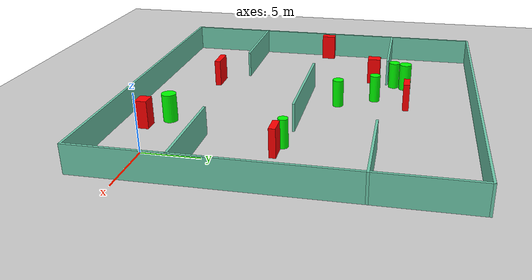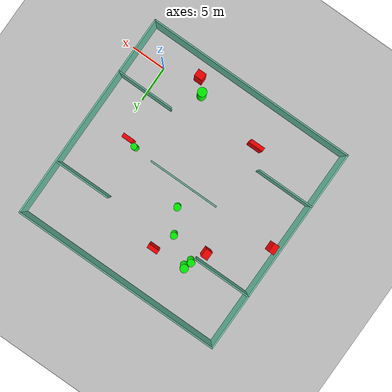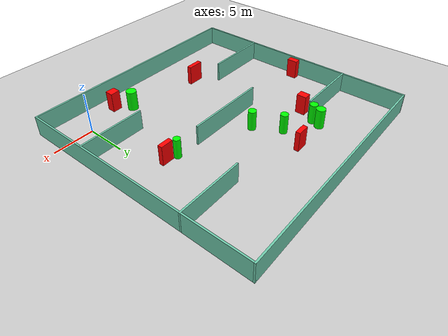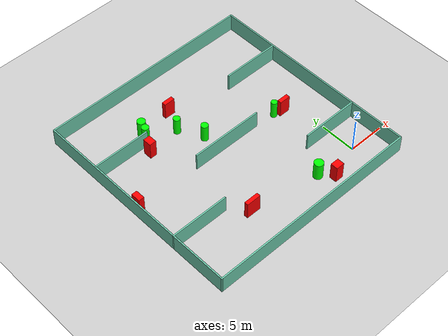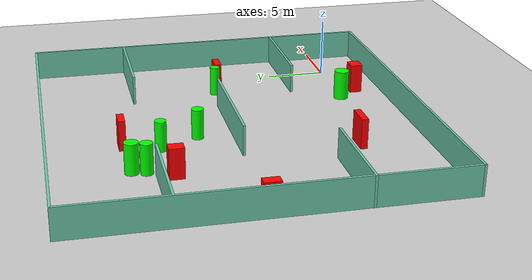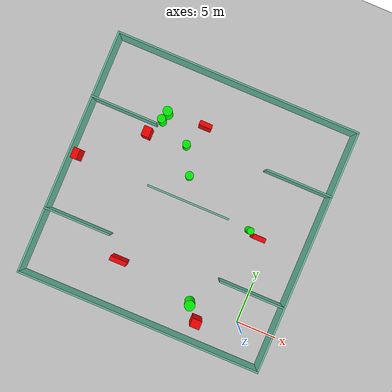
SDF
<sdf version="1.7">
 <world name="default">
  <light name="sun" type="directional">
   <pose>0 0 10 0 -0 0</pose>
   <diffuse>0.8 0.8 0.8 1</diffuse>
   <specular>0.2 0.2 0.2 1</specular>
   <attenuation>
    <range>1000</range>
    <constant>0.9</constant>
    <linear>0.01</linear>
    <quadratic>0.001</quadratic>
   </attenuation>
   <direction>-0.5 0.1 -0.9</direction>
   <spot><inner_angle>0</inner_angle><outer_angle>0</outer_angle><falloff>0</falloff></spot>
  </light>
  <model name="ground_plane">
   <static>1</static>
   <link name="link">
    <collision name="collision">
     <geometry><plane><normal>0 0 1</normal><size>100 100</size></plane></geometry>
     <surface>
      <contact><collide_bitmask>65535</collide_bitmask></contact>
      <friction><ode><mu>100</mu><mu2>50</mu2></ode></friction>
     </surface>
    </collision>
    <visual name="visual">
     <cast_shadows>0</cast_shadows>
     <geometry><plane><normal>0 0 1</normal><size>100 100</size></plane></geometry>
     <material>
      <script><uri>file://media/materials/scripts/gazebo.material</uri><name>Gazebo/Grey</name></script>
     </material>
    </visual>
   </link>
  </model>
  <gravity>0 0 -9.8</gravity>
  <magnetic_field>6e-06 2.3e-05 -4.2e-05</magnetic_field>
  <atmosphere type="adiabatic"/>
  <physics type="ode">
   <max_step_size>0.001</max_step_size>
   <real_time_factor>1</real_time_factor>
   <real_time_update_rate>1000</real_time_update_rate>
  </physics>
  <scene><ambient>0.4 0.4 0.4 1</ambient><background>0.7 0.7 0.7 1</background><shadows>1</shadows></scene>
  <spherical_coordinates>
   <surface_model>EARTH_WGS84</surface_model>
   <latitude_deg>0</latitude_deg>
   <longitude_deg>0</longitude_deg>
   <elevation>0</elevation>
   <heading_deg>0</heading_deg>
  </spherical_coordinates>
  <model name="my_base_walls">
   <link name="Wall_10">
    <collision name="Wall_10_Collision">
     <geometry><box><size>8.2 0.2 2.5</size></box></geometry>
     <pose>0 0 1.25 0 -0 0</pose>
    </collision>
    <visual name="Wall_10_Visual">
     <pose>0 0 1.25 0 -0 0</pose>
     <geometry><box><size>8.2 0.2 2.5</size></box></geometry>
     <material>
      <script><uri>file://media/materials/scripts/gazebo.material</uri><name>Gazebo/Grey</name></script>
      <ambient>0.435294 0.796078 0.67451 1</ambient>
     </material>
     <meta><layer>0</layer></meta>
    </visual>
    <pose>-11 -7 0 0 -0 0</pose>
   </link>
   <link name="Wall_12">
    <collision name="Wall_12_Collision">
     <geometry><box><size>8.2 0.2 2.5</size></box></geometry>
     <pose>0 0 1.25 0 -0 0</pose>
    </collision>
    <visual name="Wall_12_Visual">
     <pose>0 0 1.25 0 -0 0</pose>
     <geometry><box><size>8.2 0.2 2.5</size></box></geometry>
     <material>
      <script><uri>file://media/materials/scripts/gazebo.material</uri><name>Gazebo/Grey</name></script>
      <ambient>0.435294 0.796078 0.67451 1</ambient>
     </material>
     <meta><layer>0</layer></meta>
    </visual>
    <pose>-11 7 0 0 -0 0</pose>
   </link>
   <link name="Wall_14">
    <collision name="Wall_14_Collision">
     <geometry><box><size>8.2 0.2 2.5</size></box></geometry>
     <pose>0 0 1.25 0 -0 0</pose>
    </collision>
    <visual name="Wall_14_Visual">
     <pose>0 0 1.25 0 -0 0</pose>
     <geometry><box><size>8.2 0.2 2.5</size></box></geometry>
     <material>
      <script><uri>file://media/materials/scripts/gazebo.material</uri><name>Gazebo/Grey</name></script>
      <ambient>0.435294 0.796078 0.67451 1</ambient>
     </material>
     <meta><layer>0</layer></meta>
    </visual>
    <pose>11 7 0 0 -0 3.14159</pose>
   </link>
   <link name="Wall_16">
    <collision name="Wall_16_Collision">
     <geometry><box><size>10.2 0.2 2.5</size></box></geometry>
     <pose>0 0 1.25 0 -0 0</pose>
    </collision>
    <visual name="Wall_16_Visual">
     <pose>0 0 1.25 0 -0 0</pose>
     <geometry><box><size>10.2 0.2 2.5</size></box></geometry>
     <material>
      <script><uri>file://media/materials/scripts/gazebo.material</uri><name>Gazebo/Grey</name></script>
      <ambient>0.435294 0.796078 0.67451 1</ambient>
     </material>
     <meta><layer>0</layer></meta>
    </visual>
    <pose>0 0 0 0 -0 3.14159</pose>
   </link>
   <link name="Wall_2">
    <collision name="Wall_2_Collision">
     <geometry><box><size>30.2 0.2 2.5</size></box></geometry>
     <pose>0 0 1.25 0 -0 0</pose>
    </collision>
    <visual name="Wall_2_Visual">
     <pose>0 0 1.25 0 -0 0</pose>
     <geometry><box><size>30.2 0.2 2.5</size></box></geometry>
     <material>
      <script><uri>file://media/materials/scripts/gazebo.material</uri><name>Gazebo/Grey</name></script>
      <ambient>0.435294 0.796078 0.67451 1</ambient>
     </material>
     <meta><layer>0</layer></meta>
    </visual>
    <pose>0 -15 0 0 -0 3.14159</pose>
   </link>
   <link name="Wall_3">
    <collision name="Wall_3_Collision">
     <geometry><box><size>30.2 0.2 2.5</size></box></geometry>
     <pose>0 0 1.25 0 -0 0</pose>
    </collision>
    <visual name="Wall_3_Visual">
     <pose>0 0 1.25 0 -0 0</pose>
     <geometry><box><size>30.2 0.2 2.5</size></box></geometry>
     <material>
      <script><uri>file://media/materials/scripts/gazebo.material</uri><name>Gazebo/Grey</name></script>
      <ambient>0.435294 0.796078 0.67451 1</ambient>
     </material>
     <meta><layer>0</layer></meta>
    </visual>
    <pose>-15 0 0 0 -0 1.5708</pose>
   </link>
   <link name="Wall_4">
    <collision name="Wall_4_Collision">
     <geometry><box><size>30.2 0.2 2.5</size></box></geometry>
     <pose>0 0 1.25 0 -0 0</pose>
    </collision>
    <visual name="Wall_4_Visual">
     <pose>0 0 1.25 0 -0 0</pose>
     <geometry><box><size>30.2 0.2 2.5</size></box></geometry>
     <material>
      <script><uri>file://media/materials/scripts/gazebo.material</uri><name>Gazebo/Grey</name></script>
      <ambient>0.435294 0.796078 0.67451 1</ambient>
     </material>
     <meta><layer>0</layer></meta>
    </visual>
    <pose>0 15 0 0 -0 0</pose>
   </link>
   <link name="Wall_6">
    <collision name="Wall_6_Collision">
     <geometry><box><size>30.2 0.2 2.5</size></box></geometry>
     <pose>0 0 1.25 0 -0 0</pose>
    </collision>
    <visual name="Wall_6_Visual">
     <pose>0 0 1.25 0 -0 0</pose>
     <geometry><box><size>30.2 0.2 2.5</size></box></geometry>
     <material>
      <script><uri>file://media/materials/scripts/gazebo.material</uri><name>Gazebo/Grey</name></script>
      <ambient>0.435294 0.796078 0.67451 1</ambient>
     </material>
     <meta><layer>0</layer></meta>
    </visual>
    <pose>15 0 0 0 -0 1.5708</pose>
   </link>
   <link name="Wall_8">
    <collision name="Wall_8_Collision">
     <geometry><box><size>8.2 0.2 2.5</size></box></geometry>
     <pose>0 0 1.25 0 -0 0</pose>
    </collision>
    <visual name="Wall_8_Visual">
     <pose>0 0 1.25 0 -0 0</pose>
     <geometry><box><size>8.2 0.2 2.5</size></box></geometry>
     <material>
      <script><uri>file://media/materials/scripts/gazebo.material</uri><name>Gazebo/Grey</name></script>
      <ambient>0.435294 0.796078 0.67451 1</ambient>
     </material>
     <meta><layer>0</layer></meta>
    </visual>
    <pose>11 -7 0 0 -0 3.14159</pose>
   </link>
   <static>1</static>
   <pose>-11 11 0 0 -0 0</pose>
  </model>
  <model name="cylinder1">
   <static>1</static>
   <link name="link">
    <inertial>
     <mass>1</mass>
     <inertia><ixx>0.5</ixx><ixy>0</ixy><ixz>0</ixz><iyy>0.5</iyy><iyz>0</iyz><izz>1</izz></inertia>
    </inertial>
    <collision name="collision">
     <geometry><cylinder><radius>0.49314140867245226</radius><length>2.5</length></cylinder></geometry>
    </collision>
    <visual name="visual">
     <geometry><cylinder><radius>0.49314140867245226</radius><length>2.5</length></cylinder></geometry>
     <material>
      <ambient>0 1 0 1</ambient>
      <diffuse>0 1 0 1</diffuse>
      <specular>0.1 0.1 0.1 1</specular>
      <emissive>0 0 0 0</emissive>
     </material>
    </visual>
   </link>
   <pose>-12.053664994820817 13.90488767127136 1.25 0 0 0</pose>
  </model>
  <model name="cylinder2">
   <static>1</static>
   <link name="link">
    <inertial>
     <mass>1</mass>
     <inertia><ixx>0.5</ixx><ixy>0</ixy><ixz>0</ixz><iyy>0.5</iyy><iyz>0</iyz><izz>1</izz></inertia>
    </inertial>
    <collision name="collision">
     <geometry><cylinder><radius>0.4717834919511466</radius><length>2.5</length></cylinder></geometry>
    </collision>
    <visual name="visual">
     <geometry><cylinder><radius>0.4717834919511466</radius><length>2.5</length></cylinder></geometry>
     <material>
      <ambient>0 1 0 1</ambient>
      <diffuse>0 1 0 1</diffuse>
      <specular>0.1 0.1 0.1 1</specular>
      <emissive>0 0 0 0</emissive>
     </material>
    </visual>
   </link>
   <pose>-13.790203336797646 17.112933656817685 1.25 0 0 0</pose>
  </model>
  <model name="cylinder3">
   <static>1</static>
   <link name="link">
    <inertial>
     <mass>1</mass>
     <inertia><ixx>0.5</ixx><ixy>0</ixy><ixz>0</ixz><iyy>0.5</iyy><iyz>0</iyz><izz>1</izz></inertia>
    </inertial>
    <collision name="collision">
     <geometry><cylinder><radius>0.5652798901509993</radius><length>2.5</length></cylinder></geometry>
    </collision>
    <visual name="visual">
     <geometry><cylinder><radius>0.5652798901509993</radius><length>2.5</length></cylinder></geometry>
     <material>
      <ambient>0 1 0 1</ambient>
      <diffuse>0 1 0 1</diffuse>
      <specular>0.1 0.1 0.1 1</specular>
      <emissive>0 0 0 0</emissive>
     </material>
    </visual>
   </link>
   <pose>-17.281674399673264 19.77602591628785 1.25 0 0 0</pose>
  </model>
  <model name="cylinder4">
   <static>1</static>
   <link name="link">
    <inertial>
     <mass>1</mass>
     <inertia><ixx>0.5</ixx><ixy>0</ixy><ixz>0</ixz><iyy>0.5</iyy><iyz>0</iyz><izz>1</izz></inertia>
    </inertial>
    <collision name="collision">
     <geometry><cylinder><radius>0.4214146696957511</radius><length>2.5</length></cylinder></geometry>
    </collision>
    <visual name="visual">
     <geometry><cylinder><radius>0.4214146696957511</radius><length>2.5</length></cylinder></geometry>
     <material>
      <ambient>0 1 0 1</ambient>
      <diffuse>0 1 0 1</diffuse>
      <specular>0.1 0.1 0.1 1</specular>
      <emissive>0 0 0 0</emissive>
     </material>
    </visual>
   </link>
   <pose>-3.066180855043946 10.749751429800623 1.25 0 0 0</pose>
  </model>
  <model name="cylinder5">
   <static>1</static>
   <link name="link">
    <inertial>
     <mass>1</mass>
     <inertia><ixx>0.5</ixx><ixy>0</ixy><ixz>0</ixz><iyy>0.5</iyy><iyz>0</iyz><izz>1</izz></inertia>
    </inertial>
    <collision name="collision">
     <geometry><cylinder><radius>0.6301676159116871</radius><length>2.5</length></cylinder></geometry>
    </collision>
    <visual name="visual">
     <geometry><cylinder><radius>0.6301676159116871</radius><length>2.5</length></cylinder></geometry>
     <material>
      <ambient>0 1 0 1</ambient>
      <diffuse>0 1 0 1</diffuse>
      <specular>0.1 0.1 0.1 1</specular>
      <emissive>0 0 0 0</emissive>
     </material>
    </visual>
   </link>
   <pose>-6.190397593287216 0.07513400283573324 1.25 0 0 0</pose>
  </model>
  <model name="cylinder6">
   <static>1</static>
   <link name="link">
    <inertial>
     <mass>1</mass>
     <inertia><ixx>0.5</ixx><ixy>0</ixy><ixz>0</ixz><iyy>0.5</iyy><iyz>0</iyz><izz>1</izz></inertia>
    </inertial>
    <collision name="collision">
     <geometry><cylinder><radius>0.4992944511632147</radius><length>2.5</length></cylinder></geometry>
    </collision>
    <visual name="visual">
     <geometry><cylinder><radius>0.4992944511632147</radius><length>2.5</length></cylinder></geometry>
     <material>
      <ambient>0 1 0 1</ambient>
      <diffuse>0 1 0 1</diffuse>
      <specular>0.1 0.1 0.1 1</specular>
      <emissive>0 0 0 0</emissive>
     </material>
    </visual>
   </link>
   <pose>-17.582229156379764 18.690043060409806 1.25 0 0 0</pose>
  </model>
  <model name="box1">
   <static>1</static>
   <link name="link">
    <inertial>
     <mass>1</mass>
     <inertia><ixx>0.083</ixx><ixy>0</ixy><ixz>0</ixz><iyy>0.083</iyy><iyz>0</iyz><izz>0.083</izz></inertia>
    </inertial>
    <collision name="collision">
     <geometry><box><size>2.0456592594767598 0.5442006601591168 2.5</size></box></geometry>
    </collision>
    <visual name="visual">
     <geometry><box><size>2.0456592594767598 0.5442006601591168 2.5</size></box></geometry>
     <material>
      <ambient>1 0 0 1</ambient>
      <diffuse>1 0 0 1</diffuse>
      <specular>0.1 0.1 0.1 1</specular>
      <emissive>0 0 0 0</emissive>
     </material>
    </visual>
    <sensor name="my_contact" type="contact">
     <contact><collision>box_collision</collision><topic>__default_topic__</topic></contact>
    </sensor>
   </link>
   <pose>-15.827274696006675 1.6004255119222606 1.25 0 0 0</pose>
  </model>
  <model name="box2">
   <static>1</static>
   <link name="link">
    <inertial>
     <mass>1</mass>
     <inertia><ixx>0.083</ixx><ixy>0</ixy><ixz>0</ixz><iyy>0.083</iyy><iyz>0</iyz><izz>0.083</izz></inertia>
    </inertial>
    <collision name="collision">
     <geometry><box><size>1.2014032678104298 1.016036506208001 2.5</size></box></geometry>
    </collision>
    <visual name="visual">
     <geometry><box><size>1.2014032678104298 1.016036506208001 2.5</size></box></geometry>
     <material>
      <ambient>1 0 0 1</ambient>
      <diffuse>1 0 0 1</diffuse>
      <specular>0.1 0.1 0.1 1</specular>
      <emissive>0 0 0 0</emissive>
     </material>
    </visual>
    <sensor name="my_contact" type="contact">
     <contact><collision>box_collision</collision><topic>__default_topic__</topic></contact>
    </sensor>
   </link>
   <pose>-4.723174457689753 -1.5906173895279077 1.25 0 0 0</pose>
  </model>
  <model name="box3">
   <static>1</static>
   <link name="link">
    <inertial>
     <mass>1</mass>
     <inertia><ixx>0.083</ixx><ixy>0</ixy><ixz>0</ixz><iyy>0.083</iyy><iyz>0</iyz><izz>0.083</izz></inertia>
    </inertial>
    <collision name="collision">
     <geometry><box><size>1.544274577285463 0.5670873806431992 2.5</size></box></geometry>
    </collision>
    <visual name="visual">
     <geometry><box><size>1.544274577285463 0.5670873806431992 2.5</size></box></geometry>
     <material>
      <ambient>1 0 0 1</ambient>
      <diffuse>1 0 0 1</diffuse>
      <specular>0.1 0.1 0.1 1</specular>
      <emissive>0 0 0 0</emissive>
     </material>
    </visual>
    <sensor name="my_contact" type="contact">
     <contact><collision>box_collision</collision><topic>__default_topic__</topic></contact>
    </sensor>
   </link>
   <pose>-1.8021433275017174 10.334034301047808 1.25 0 0 0</pose>
  </model>
  <model name="box4">
   <static>1</static>
   <link name="link">
    <inertial>
     <mass>1</mass>
     <inertia><ixx>0.083</ixx><ixy>0</ixy><ixz>0</ixz><iyy>0.083</iyy><iyz>0</iyz><izz>0.083</izz></inertia>
    </inertial>
    <collision name="collision">
     <geometry><box><size>0.7833197912448121 1.3161102543687286 2.5</size></box></geometry>
    </collision>
    <visual name="visual">
     <geometry><box><size>0.7833197912448121 1.3161102543687286 2.5</size></box></geometry>
     <material>
      <ambient>1 0 0 1</ambient>
      <diffuse>1 0 0 1</diffuse>
      <specular>0.1 0.1 0.1 1</specular>
      <emissive>0 0 0 0</emissive>
     </material>
    </visual>
    <sensor name="my_contact" type="contact">
     <contact><collision>box_collision</collision><topic>__default_topic__</topic></contact>
    </sensor>
   </link>
   <pose>-25.207279342388894 11.153544866422756 1.25 0 0 0</pose>
  </model>
  <model name="box5">
   <static>1</static>
   <link name="link">
    <inertial>
     <mass>1</mass>
     <inertia><ixx>0.083</ixx><ixy>0</ixy><ixz>0</ixz><iyy>0.083</iyy><iyz>0</iyz><izz>0.083</izz></inertia>
    </inertial>
    <collision name="collision">
     <geometry><box><size>1.5434235196608397 0.5619037366829235 2.5</size></box></geometry>
    </collision>
    <visual name="visual">
     <geometry><box><size>1.5434235196608397 0.5619037366829235 2.5</size></box></geometry>
     <material>
      <ambient>1 0 0 1</ambient>
      <diffuse>1 0 0 1</diffuse>
      <specular>0.1 0.1 0.1 1</specular>
      <emissive>0 0 0 0</emissive>
     </material>
    </visual>
    <sensor name="my_contact" type="contact">
     <contact><collision>box_collision</collision><topic>__default_topic__</topic></contact>
    </sensor>
   </link>
   <pose>-12.598080395956899 20.033997700760132 1.25 0 0 0</pose>
  </model>
  <model name="box6">
   <static>1</static>
   <link name="link">
    <inertial>
     <mass>1</mass>
     <inertia><ixx>0.083</ixx><ixy>0</ixy><ixz>0</ixz><iyy>0.083</iyy><iyz>0</iyz><izz>0.083</izz></inertia>
    </inertial>
    <collision name="collision">
     <geometry><box><size>0.9682412597616509 1.212229634223285 2.5</size></box></geometry>
    </collision>
    <visual name="visual">
     <geometry><box><size>0.9682412597616509 1.212229634223285 2.5</size></box></geometry>
     <material>
      <ambient>1 0 0 1</ambient>
      <diffuse>1 0 0 1</diffuse>
      <specular>0.1 0.1 0.1 1</specular>
      <emissive>0 0 0 0</emissive>
     </material>
    </visual>
    <sensor name="my_contact" type="contact">
     <contact><collision>box_collision</collision><topic>__default_topic__</topic></contact>
    </sensor>
   </link>
   <pose>-18.59767212767699 16.66299700608191 1.25 0 0 0</pose>
  </model>
 </world>
</sdf>
